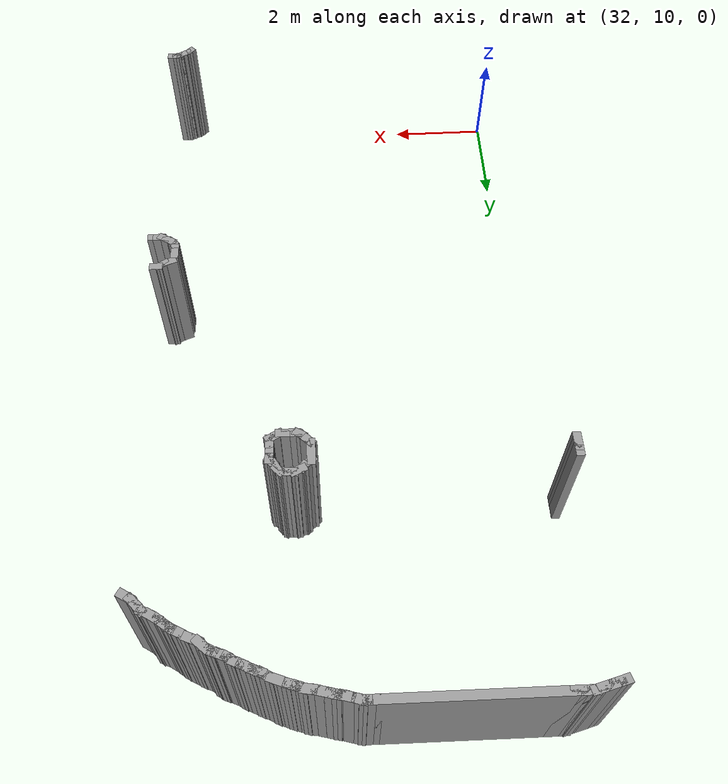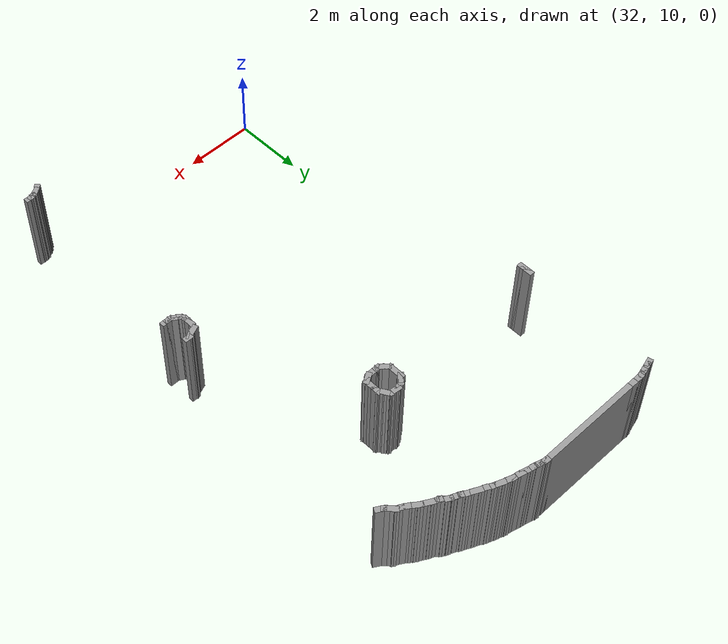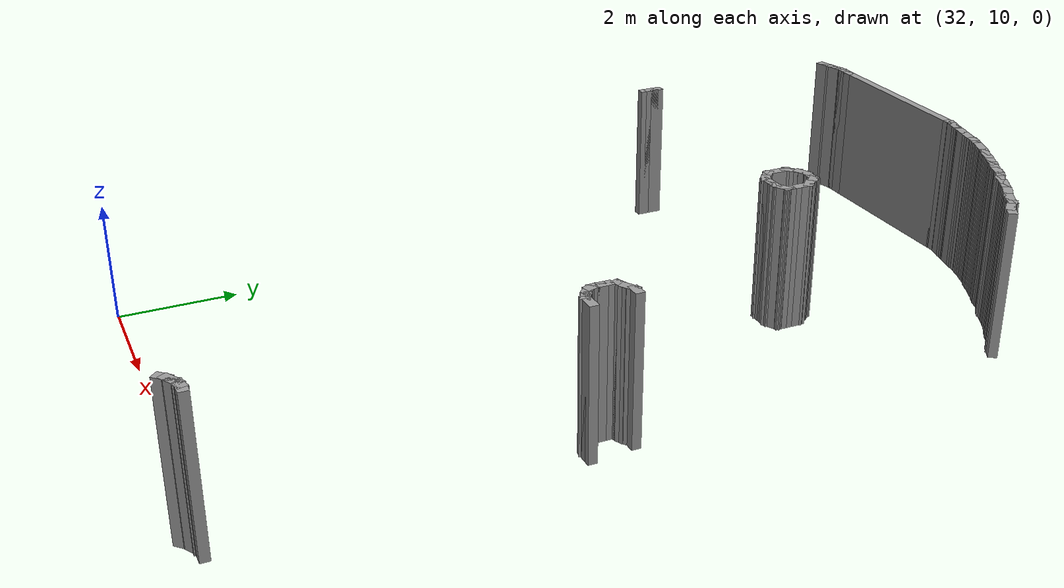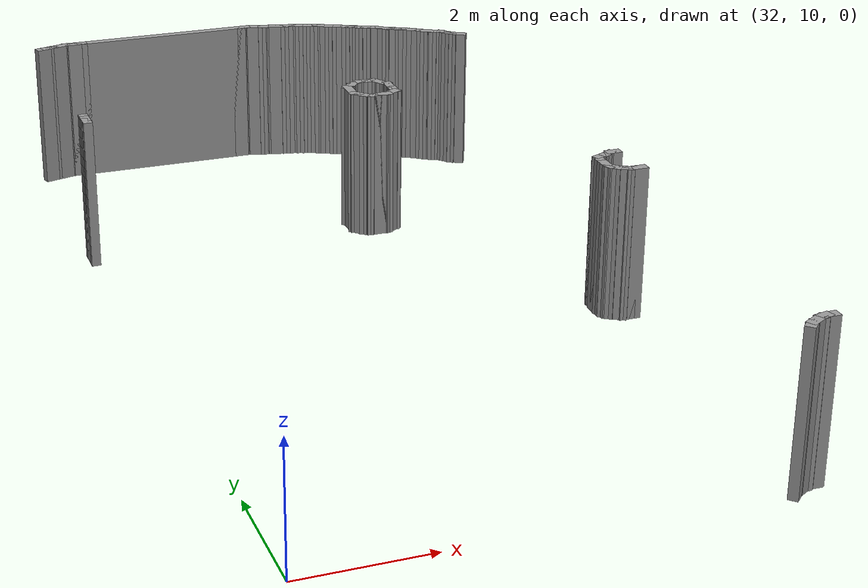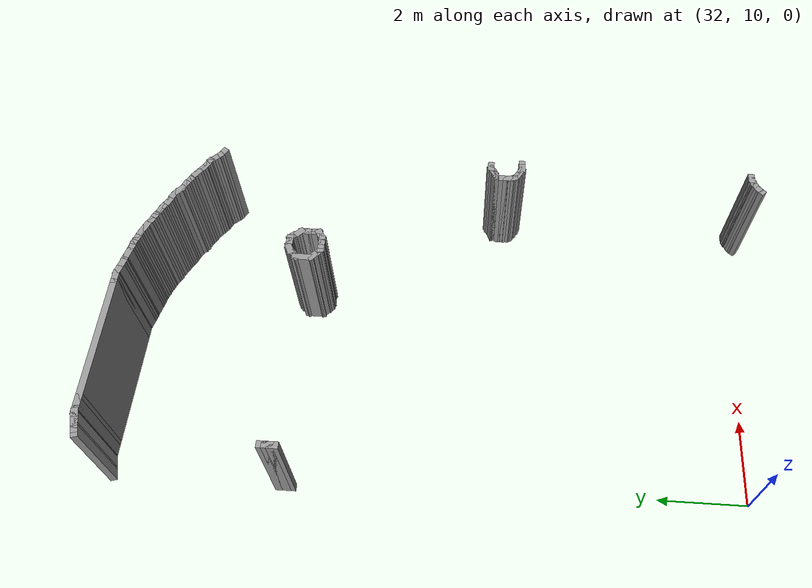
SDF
<sdf version="1.6">
 <model name="draft3">
  <pose>34.2026 -2.81154 0 0 -0 0</pose>
  <link name="Wall_181">
   <collision name="Wall_181_Collision">
    <geometry><box><size>0.25 0.15 2.5</size></box></geometry>
    <pose>0 0 1.25 0 -0 0</pose>
   </collision>
   <visual name="Wall_181_Visual">
    <pose>0 0 1.25 0 -0 0</pose>
    <geometry><box><size>0.25 0.15 2.5</size></box></geometry>
    <material>
     <script><uri>file://media/materials/scripts/gazebo.material</uri><name>Gazebo/Grey</name></script>
     <ambient>1 1 1 1</ambient>
    </material>
   </visual>
   <pose>-2.41075 26.8769 0 0 -0 0.261799</pose>
  </link>
  <link name="Wall_182">
   <collision name="Wall_182_Collision">
    <geometry><box><size>0.25 0.15 2.5</size></box></geometry>
    <pose>0 0 1.25 0 -0 0</pose>
   </collision>
   <visual name="Wall_182_Visual">
    <pose>0 0 1.25 0 -0 0</pose>
    <geometry><box><size>0.25 0.15 2.5</size></box></geometry>
    <material>
     <script><uri>file://media/materials/scripts/gazebo.material</uri><name>Gazebo/Grey</name></script>
     <ambient>1 1 1 1</ambient>
    </material>
   </visual>
   <pose>-2.31416 26.9028 0 0 -0 0.261799</pose>
  </link>
  <link name="Wall_183">
   <collision name="Wall_183_Collision">
    <geometry><box><size>0.25 0.15 2.5</size></box></geometry>
    <pose>0 0 1.25 0 -0 0</pose>
   </collision>
   <visual name="Wall_183_Visual">
    <pose>0 0 1.25 0 -0 0</pose>
    <geometry><box><size>0.25 0.15 2.5</size></box></geometry>
    <material>
     <script><uri>file://media/materials/scripts/gazebo.material</uri><name>Gazebo/Grey</name></script>
     <ambient>1 1 1 1</ambient>
    </material>
   </visual>
   <pose>-2.21757 26.9287 0 0 -0 0.261799</pose>
  </link>
  <link name="Wall_184">
   <collision name="Wall_184_Collision">
    <geometry><box><size>0.25 0.15 2.5</size></box></geometry>
    <pose>0 0 1.25 0 -0 0</pose>
   </collision>
   <visual name="Wall_184_Visual">
    <pose>0 0 1.25 0 -0 0</pose>
    <geometry><box><size>0.25 0.15 2.5</size></box></geometry>
    <material>
     <script><uri>file://media/materials/scripts/gazebo.material</uri><name>Gazebo/Grey</name></script>
     <ambient>1 1 1 1</ambient>
    </material>
   </visual>
   <pose>-2.12097 26.9545 0 0 -0 0.261799</pose>
  </link>
  <link name="Wall_185">
   <collision name="Wall_185_Collision">
    <geometry><box><size>0.25 0.15 2.5</size></box></geometry>
    <pose>0 0 1.25 0 -0 0</pose>
   </collision>
   <visual name="Wall_185_Visual">
    <pose>0 0 1.25 0 -0 0</pose>
    <geometry><box><size>0.25 0.15 2.5</size></box></geometry>
    <material>
     <script><uri>file://media/materials/scripts/gazebo.material</uri><name>Gazebo/Grey</name></script>
     <ambient>1 1 1 1</ambient>
    </material>
   </visual>
   <pose>-2.02438 26.9804 0 0 -0 0.261799</pose>
  </link>
  <link name="Wall_186">
   <collision name="Wall_186_Collision">
    <geometry><box><size>0.25 0.15 2.5</size></box></geometry>
    <pose>0 0 1.25 0 -0 0</pose>
   </collision>
   <visual name="Wall_186_Visual">
    <pose>0 0 1.25 0 -0 0</pose>
    <geometry><box><size>0.25 0.15 2.5</size></box></geometry>
    <material>
     <script><uri>file://media/materials/scripts/gazebo.material</uri><name>Gazebo/Grey</name></script>
     <ambient>1 1 1 1</ambient>
    </material>
   </visual>
   <pose>-1.92608 26.9934 0 0 -0 0</pose>
  </link>
  <link name="Wall_187">
   <collision name="Wall_187_Collision">
    <geometry><box><size>0.25 0.15 2.5</size></box></geometry>
    <pose>0 0 1.25 0 -0 0</pose>
   </collision>
   <visual name="Wall_187_Visual">
    <pose>0 0 1.25 0 -0 0</pose>
    <geometry><box><size>0.25 0.15 2.5</size></box></geometry>
    <material>
     <script><uri>file://media/materials/scripts/gazebo.material</uri><name>Gazebo/Grey</name></script>
     <ambient>1 1 1 1</ambient>
    </material>
   </visual>
   <pose>-1.82608 26.9934 0 0 -0 0</pose>
  </link>
  <link name="Wall_188">
   <collision name="Wall_188_Collision">
    <geometry><box><size>0.25 0.15 2.5</size></box></geometry>
    <pose>0 0 1.25 0 -0 0</pose>
   </collision>
   <visual name="Wall_188_Visual">
    <pose>0 0 1.25 0 -0 0</pose>
    <geometry><box><size>0.25 0.15 2.5</size></box></geometry>
    <material>
     <script><uri>file://media/materials/scripts/gazebo.material</uri><name>Gazebo/Grey</name></script>
     <ambient>1 1 1 1</ambient>
    </material>
   </visual>
   <pose>-1.72608 26.9934 0 0 -0 0</pose>
  </link>
  <link name="Wall_189">
   <collision name="Wall_189_Collision">
    <geometry><box><size>3 0.15 2.5</size></box></geometry>
    <pose>0 0 1.25 0 -0 0</pose>
   </collision>
   <visual name="Wall_189_Visual">
    <pose>0 0 1.25 0 -0 0</pose>
    <geometry><box><size>3 0.15 2.5</size></box></geometry>
    <material>
     <script><uri>file://media/materials/scripts/gazebo.material</uri><name>Gazebo/Grey</name></script>
     <ambient>1 1 1 1</ambient>
    </material>
   </visual>
   <pose>-0.251084 26.9934 0 0 -0 0</pose>
  </link>
  <link name="Wall_190">
   <collision name="Wall_190_Collision">
    <geometry><box><size>0.25 0.15 2.5</size></box></geometry>
    <pose>0 0 1.25 0 -0 0</pose>
   </collision>
   <visual name="Wall_190_Visual">
    <pose>0 0 1.25 0 -0 0</pose>
    <geometry><box><size>0.25 0.15 2.5</size></box></geometry>
    <material>
     <script><uri>file://media/materials/scripts/gazebo.material</uri><name>Gazebo/Grey</name></script>
     <ambient>1 1 1 1</ambient>
    </material>
   </visual>
   <pose>1.22392 26.9934 0 0 -0 0</pose>
  </link>
  <link name="Wall_191">
   <collision name="Wall_191_Collision">
    <geometry><box><size>0.25 0.15 2.5</size></box></geometry>
    <pose>0 0 1.25 0 -0 0</pose>
   </collision>
   <visual name="Wall_191_Visual">
    <pose>0 0 1.25 0 -0 0</pose>
    <geometry><box><size>0.25 0.15 2.5</size></box></geometry>
    <material>
     <script><uri>file://media/materials/scripts/gazebo.material</uri><name>Gazebo/Grey</name></script>
     <ambient>1 1 1 1</ambient>
    </material>
   </visual>
   <pose>1.32392 26.9934 0 0 -0 0</pose>
  </link>
  <link name="Wall_192">
   <collision name="Wall_192_Collision">
    <geometry><box><size>0.25 0.15 2.5</size></box></geometry>
    <pose>0 0 1.25 0 -0 0</pose>
   </collision>
   <visual name="Wall_192_Visual">
    <pose>0 0 1.25 0 -0 0</pose>
    <geometry><box><size>0.25 0.15 2.5</size></box></geometry>
    <material>
     <script><uri>file://media/materials/scripts/gazebo.material</uri><name>Gazebo/Grey</name></script>
     <ambient>1 1 1 1</ambient>
    </material>
   </visual>
   <pose>1.42221 26.9804 0 0 0 -0.261799</pose>
  </link>
  <link name="Wall_193">
   <collision name="Wall_193_Collision">
    <geometry><box><size>0.25 0.15 2.5</size></box></geometry>
    <pose>0 0 1.25 0 -0 0</pose>
   </collision>
   <visual name="Wall_193_Visual">
    <pose>0 0 1.25 0 -0 0</pose>
    <geometry><box><size>0.25 0.15 2.5</size></box></geometry>
    <material>
     <script><uri>file://media/materials/scripts/gazebo.material</uri><name>Gazebo/Grey</name></script>
     <ambient>1 1 1 1</ambient>
    </material>
   </visual>
   <pose>1.51881 26.9545 0 0 0 -0.261799</pose>
  </link>
  <link name="Wall_194">
   <collision name="Wall_194_Collision">
    <geometry><box><size>0.25 0.15 2.5</size></box></geometry>
    <pose>0 0 1.25 0 -0 0</pose>
   </collision>
   <visual name="Wall_194_Visual">
    <pose>0 0 1.25 0 -0 0</pose>
    <geometry><box><size>0.25 0.15 2.5</size></box></geometry>
    <material>
     <script><uri>file://media/materials/scripts/gazebo.material</uri><name>Gazebo/Grey</name></script>
     <ambient>1 1 1 1</ambient>
    </material>
   </visual>
   <pose>1.6154 26.9287 0 0 0 -0.261799</pose>
  </link>
  <link name="Wall_195">
   <collision name="Wall_195_Collision">
    <geometry><box><size>0.23983 0.15 2.5</size></box></geometry>
    <pose>0 0 1.25 0 -0 0</pose>
   </collision>
   <visual name="Wall_195_Visual">
    <pose>0 0 1.25 0 -0 0</pose>
    <geometry><box><size>0.23983 0.15 2.5</size></box></geometry>
    <material>
     <script><uri>file://media/materials/scripts/gazebo.material</uri><name>Gazebo/Grey</name></script>
     <ambient>1 1 1 1</ambient>
    </material>
   </visual>
   <pose>1.70796 26.9081 0 0 0 -0.170476</pose>
  </link>
  <link name="Wall_196">
   <collision name="Wall_196_Collision">
    <geometry><box><size>0.259056 0.15 2.5</size></box></geometry>
    <pose>0 0 1.25 0 -0 0</pose>
   </collision>
   <visual name="Wall_196_Visual">
    <pose>0 0 1.25 0 -0 0</pose>
    <geometry><box><size>0.259056 0.15 2.5</size></box></geometry>
    <material>
     <script><uri>file://media/materials/scripts/gazebo.material</uri><name>Gazebo/Grey</name></script>
     <ambient>1 1 1 1</ambient>
    </material>
   </visual>
   <pose>1.80512 26.8873 0 0 0 -0.244979</pose>
  </link>
  <link name="Wall_197">
   <collision name="Wall_197_Collision">
    <geometry><box><size>0.259056 0.15 2.5</size></box></geometry>
    <pose>0 0 1.25 0 -0 0</pose>
   </collision>
   <visual name="Wall_197_Visual">
    <pose>0 0 1.25 0 -0 0</pose>
    <geometry><box><size>0.259056 0.15 2.5</size></box></geometry>
    <material>
     <script><uri>file://media/materials/scripts/gazebo.material</uri><name>Gazebo/Grey</name></script>
     <ambient>1 1 1 1</ambient>
    </material>
   </visual>
   <pose>1.91092 26.8608 0 0 0 -0.244979</pose>
  </link>
  <link name="Wall_198">
   <collision name="Wall_198_Collision">
    <geometry><box><size>0.259056 0.15 2.5</size></box></geometry>
    <pose>0 0 1.25 0 -0 0</pose>
   </collision>
   <visual name="Wall_198_Visual">
    <pose>0 0 1.25 0 -0 0</pose>
    <geometry><box><size>0.259056 0.15 2.5</size></box></geometry>
    <material>
     <script><uri>file://media/materials/scripts/gazebo.material</uri><name>Gazebo/Grey</name></script>
     <ambient>1 1 1 1</ambient>
    </material>
   </visual>
   <pose>2.01672 26.8344 0 0 0 -0.244979</pose>
  </link>
  <link name="Wall_199">
   <collision name="Wall_199_Collision">
    <geometry><box><size>0.310889 0.15 2.5</size></box></geometry>
    <pose>0 0 1.25 0 -0 0</pose>
   </collision>
   <visual name="Wall_199_Visual">
    <pose>0 0 1.25 0 -0 0</pose>
    <geometry><box><size>0.310889 0.15 2.5</size></box></geometry>
    <material>
     <script><uri>file://media/materials/scripts/gazebo.material</uri><name>Gazebo/Grey</name></script>
     <ambient>1 1 1 1</ambient>
    </material>
   </visual>
   <pose>2.14897 26.8079 0 0 0 -0.165149</pose>
  </link>
  <link name="Wall_200">
   <collision name="Wall_200_Collision">
    <geometry><box><size>0.262994 0.15 2.5</size></box></geometry>
    <pose>0 0 1.25 0 -0 0</pose>
   </collision>
   <visual name="Wall_200_Visual">
    <pose>0 0 1.25 0 -0 0</pose>
    <geometry><box><size>0.262994 0.15 2.5</size></box></geometry>
    <material>
     <script><uri>file://media/materials/scripts/gazebo.material</uri><name>Gazebo/Grey</name></script>
     <ambient>1 1 1 1</ambient>
    </material>
   </visual>
   <pose>2.28122 26.7748 0 0 0 -0.358771</pose>
  </link>
  <link name="Wall_201">
   <collision name="Wall_201_Collision">
    <geometry><box><size>0.288073 0.15 2.5</size></box></geometry>
    <pose>0 0 1.25 0 -0 0</pose>
   </collision>
   <visual name="Wall_201_Visual">
    <pose>0 0 1.25 0 -0 0</pose>
    <geometry><box><size>0.288073 0.15 2.5</size></box></geometry>
    <material>
     <script><uri>file://media/materials/scripts/gazebo.material</uri><name>Gazebo/Grey</name></script>
     <ambient>1 1 1 1</ambient>
    </material>
   </visual>
   <pose>2.40024 26.7352 0 0 0 -0.291457</pose>
  </link>
  <link name="Wall_202">
   <collision name="Wall_202_Collision">
    <geometry><box><size>0.292438 0.15 2.5</size></box></geometry>
    <pose>0 0 1.25 0 -0 0</pose>
   </collision>
   <visual name="Wall_202_Visual">
    <pose>0 0 1.25 0 -0 0</pose>
    <geometry><box><size>0.292438 0.15 2.5</size></box></geometry>
    <material>
     <script><uri>file://media/materials/scripts/gazebo.material</uri><name>Gazebo/Grey</name></script>
     <ambient>1 1 1 1</ambient>
    </material>
   </visual>
   <pose>2.5325 26.6889 0 0 0 -0.380506</pose>
  </link>
  <link name="Wall_203">
   <collision name="Wall_203_Collision">
    <geometry><box><size>0.262994 0.15 2.5</size></box></geometry>
    <pose>0 0 1.25 0 -0 0</pose>
   </collision>
   <visual name="Wall_203_Visual">
    <pose>0 0 1.25 0 -0 0</pose>
    <geometry><box><size>0.262994 0.15 2.5</size></box></geometry>
    <material>
     <script><uri>file://media/materials/scripts/gazebo.material</uri><name>Gazebo/Grey</name></script>
     <ambient>1 1 1 1</ambient>
    </material>
   </visual>
   <pose>2.65152 26.6426 0 0 0 -0.358771</pose>
  </link>
  <link name="Wall_204">
   <collision name="Wall_204_Collision">
    <geometry><box><size>0.315709 0.15 2.5</size></box></geometry>
    <pose>0 0 1.25 0 -0 0</pose>
   </collision>
   <visual name="Wall_204_Visual">
    <pose>0 0 1.25 0 -0 0</pose>
    <geometry><box><size>0.315709 0.15 2.5</size></box></geometry>
    <material>
     <script><uri>file://media/materials/scripts/gazebo.material</uri><name>Gazebo/Grey</name></script>
     <ambient>1 1 1 1</ambient>
    </material>
   </visual>
   <pose>2.77716 26.5831 0 0 0 -0.499347</pose>
  </link>
  <link name="Wall_205">
   <collision name="Wall_205_Collision">
    <geometry><box><size>0.292438 0.15 2.5</size></box></geometry>
    <pose>0 0 1.25 0 -0 0</pose>
   </collision>
   <visual name="Wall_205_Visual">
    <pose>0 0 1.25 0 -0 0</pose>
    <geometry><box><size>0.292438 0.15 2.5</size></box></geometry>
    <material>
     <script><uri>file://media/materials/scripts/gazebo.material</uri><name>Gazebo/Grey</name></script>
     <ambient>1 1 1 1</ambient>
    </material>
   </visual>
   <pose>2.91602 26.517 0 0 0 -0.380506</pose>
  </link>
  <link name="Wall_206">
   <collision name="Wall_206_Collision">
    <geometry><box><size>0.327432 0.15 2.5</size></box></geometry>
    <pose>0 0 1.25 0 -0 0</pose>
   </collision>
   <visual name="Wall_206_Visual">
    <pose>0 0 1.25 0 -0 0</pose>
    <geometry><box><size>0.327432 0.15 2.5</size></box></geometry>
    <material>
     <script><uri>file://media/materials/scripts/gazebo.material</uri><name>Gazebo/Grey</name></script>
     <ambient>1 1 1 1</ambient>
    </material>
   </visual>
   <pose>3.0615 26.4508 0 0 0 -0.463648</pose>
  </link>
  <link name="Wall_207">
   <collision name="Wall_207_Collision">
    <geometry><box><size>0.280251 0.15 2.5</size></box></geometry>
    <pose>0 0 1.25 0 -0 0</pose>
   </collision>
   <visual name="Wall_207_Visual">
    <pose>0 0 1.25 0 -0 0</pose>
    <geometry><box><size>0.280251 0.15 2.5</size></box></geometry>
    <material>
     <script><uri>file://media/materials/scripts/gazebo.material</uri><name>Gazebo/Grey</name></script>
     <ambient>1 1 1 1</ambient>
    </material>
   </visual>
   <pose>3.20036 26.3847 0 0 0 -0.418224</pose>
  </link>
  <link name="Wall_208">
   <collision name="Wall_208_Collision">
    <geometry><box><size>0.274764 0.15 2.5</size></box></geometry>
    <pose>0 0 1.25 0 -0 0</pose>
   </collision>
   <visual name="Wall_208_Visual">
    <pose>0 0 1.25 0 -0 0</pose>
    <geometry><box><size>0.274764 0.15 2.5</size></box></geometry>
    <material>
     <script><uri>file://media/materials/scripts/gazebo.material</uri><name>Gazebo/Grey</name></script>
     <ambient>1 1 1 1</ambient>
    </material>
   </visual>
   <pose>3.31277 26.3252 0 0 0 -0.558599</pose>
  </link>
  <link name="Wall_209">
   <collision name="Wall_209_Collision">
    <geometry><box><size>0.280251 0.15 2.5</size></box></geometry>
    <pose>0 0 1.25 0 -0 0</pose>
   </collision>
   <visual name="Wall_209_Visual">
    <pose>0 0 1.25 0 -0 0</pose>
    <geometry><box><size>0.280251 0.15 2.5</size></box></geometry>
    <material>
     <script><uri>file://media/materials/scripts/gazebo.material</uri><name>Gazebo/Grey</name></script>
     <ambient>1 1 1 1</ambient>
    </material>
   </visual>
   <pose>3.42519 26.2657 0 0 0 -0.418224</pose>
  </link>
  <link name="Wall_210">
   <collision name="Wall_210_Collision">
    <geometry><box><size>0.233642 0.15 2.5</size></box></geometry>
    <pose>0 0 1.25 0 -0 0</pose>
   </collision>
   <visual name="Wall_210_Visual">
    <pose>0 0 1.25 0 -0 0</pose>
    <geometry><box><size>0.233642 0.15 2.5</size></box></geometry>
    <material>
     <script><uri>file://media/materials/scripts/gazebo.material</uri><name>Gazebo/Grey</name></script>
     <ambient>1 1 1 1</ambient>
    </material>
   </visual>
   <pose>3.52437 26.226 0 0 0 -0.321751</pose>
  </link>
  <link name="Wall_211">
   <collision name="Wall_211_Collision">
    <geometry><box><size>0.28616 0.15 2.5</size></box></geometry>
    <pose>0 0 1.25 0 -0 0</pose>
   </collision>
   <visual name="Wall_211_Visual">
    <pose>0 0 1.25 0 -0 0</pose>
    <geometry><box><size>0.28616 0.15 2.5</size></box></geometry>
    <material>
     <script><uri>file://media/materials/scripts/gazebo.material</uri><name>Gazebo/Grey</name></script>
     <ambient>1 1 1 1</ambient>
    </material>
   </visual>
   <pose>3.62356 26.1797 0 0 0 -0.507099</pose>
  </link>
  <link name="Wall_212">
   <collision name="Wall_212_Collision">
    <geometry><box><size>0.30925 0.15 2.5</size></box></geometry>
    <pose>0 0 1.25 0 -0 0</pose>
   </collision>
   <visual name="Wall_212_Visual">
    <pose>0 0 1.25 0 -0 0</pose>
    <geometry><box><size>0.30925 0.15 2.5</size></box></geometry>
    <material>
     <script><uri>file://media/materials/scripts/gazebo.material</uri><name>Gazebo/Grey</name></script>
     <ambient>1 1 1 1</ambient>
    </material>
   </visual>
   <pose>3.74258 26.0938 0 0 0 -0.726642</pose>
  </link>
  <link name="Wall_213">
   <collision name="Wall_213_Collision">
    <geometry><box><size>0.321925 0.15 2.5</size></box></geometry>
    <pose>0 0 1.25 0 -0 0</pose>
   </collision>
   <visual name="Wall_213_Visual">
    <pose>0 0 1.25 0 -0 0</pose>
    <geometry><box><size>0.321925 0.15 2.5</size></box></geometry>
    <material>
     <script><uri>file://media/materials/scripts/gazebo.material</uri><name>Gazebo/Grey</name></script>
     <ambient>1 1 1 1</ambient>
    </material>
   </visual>
   <pose>3.88145 26.0078 0 0 0 -0.394791</pose>
  </link>
  <link name="Wall_214">
   <collision name="Wall_214_Collision">
    <geometry><box><size>0.28616 0.15 2.5</size></box></geometry>
    <pose>0 0 1.25 0 -0 0</pose>
   </collision>
   <visual name="Wall_214_Visual">
    <pose>0 0 1.25 0 -0 0</pose>
    <geometry><box><size>0.28616 0.15 2.5</size></box></geometry>
    <material>
     <script><uri>file://media/materials/scripts/gazebo.material</uri><name>Gazebo/Grey</name></script>
     <ambient>1 1 1 1</ambient>
    </material>
   </visual>
   <pose>4.02031 25.9417 0 0 0 -0.507099</pose>
  </link>
  <link name="Wall_215">
   <collision name="Wall_215_Collision">
    <geometry><box><size>0.315709 0.15 2.5</size></box></geometry>
    <pose>0 0 1.25 0 -0 0</pose>
   </collision>
   <visual name="Wall_215_Visual">
    <pose>0 0 1.25 0 -0 0</pose>
    <geometry><box><size>0.315709 0.15 2.5</size></box></geometry>
    <material>
     <script><uri>file://media/materials/scripts/gazebo.material</uri><name>Gazebo/Grey</name></script>
     <ambient>1 1 1 1</ambient>
    </material>
   </visual>
   <pose>4.15256 25.8689 0 0 0 -0.499347</pose>
  </link>
  <link name="Wall_216">
   <collision name="Wall_216_Collision">
    <geometry><box><size>0.263766 0.15 2.5</size></box></geometry>
    <pose>0 0 1.25 0 -0 0</pose>
   </collision>
   <visual name="Wall_216_Visual">
    <pose>0 0 1.25 0 -0 0</pose>
    <geometry><box><size>0.263766 0.15 2.5</size></box></geometry>
    <material>
     <script><uri>file://media/materials/scripts/gazebo.material</uri><name>Gazebo/Grey</name></script>
     <ambient>1 1 1 1</ambient>
    </material>
   </visual>
   <pose>4.27158 25.7962 0 0 0 -0.620249</pose>
  </link>
  <link name="Wall_217">
   <collision name="Wall_217_Collision">
    <geometry><box><size>0.28225 0.15 2.5</size></box></geometry>
    <pose>0 0 1.25 0 -0 0</pose>
   </collision>
   <visual name="Wall_217_Visual">
    <pose>0 0 1.25 0 -0 0</pose>
    <geometry><box><size>0.28225 0.15 2.5</size></box></geometry>
    <material>
     <script><uri>file://media/materials/scripts/gazebo.material</uri><name>Gazebo/Grey</name></script>
     <ambient>1 1 1 1</ambient>
    </material>
   </visual>
   <pose>4.37077 25.7235 0 0 0 -0.643501</pose>
  </link>
  <link name="Wall_218">
   <collision name="Wall_218_Collision">
    <geometry><box><size>0.304229 0.15 2.5</size></box></geometry>
    <pose>0 0 1.25 0 -0 0</pose>
   </collision>
   <visual name="Wall_218_Visual">
    <pose>0 0 1.25 0 -0 0</pose>
    <geometry><box><size>0.304229 0.15 2.5</size></box></geometry>
    <material>
     <script><uri>file://media/materials/scripts/gazebo.material</uri><name>Gazebo/Grey</name></script>
     <ambient>1 1 1 1</ambient>
    </material>
   </visual>
   <pose>4.48979 25.6441 0 0 0 -0.54042</pose>
  </link>
  <link name="Wall_219">
   <collision name="Wall_219_Collision">
    <geometry><box><size>0.280251 0.15 2.5</size></box></geometry>
    <pose>0 0 1.25 0 -0 0</pose>
   </collision>
   <visual name="Wall_219_Visual">
    <pose>0 0 1.25 0 -0 0</pose>
    <geometry><box><size>0.280251 0.15 2.5</size></box></geometry>
    <material>
     <script><uri>file://media/materials/scripts/gazebo.material</uri><name>Gazebo/Grey</name></script>
     <ambient>1 1 1 1</ambient>
    </material>
   </visual>
   <pose>4.61543 25.578 0 0 0 -0.418224</pose>
  </link>
  <link name="Wall_220">
   <collision name="Wall_220_Collision">
    <geometry><box><size>0.290584 0.15 2.5</size></box></geometry>
    <pose>0 0 1.25 0 -0 0</pose>
   </collision>
   <visual name="Wall_220_Visual">
    <pose>0 0 1.25 0 -0 0</pose>
    <geometry><box><size>0.290584 0.15 2.5</size></box></geometry>
    <material>
     <script><uri>file://media/materials/scripts/gazebo.material</uri><name>Gazebo/Grey</name></script>
     <ambient>1 1 1 1</ambient>
    </material>
   </visual>
   <pose>4.72123 25.4986 0 0 0 -0.851966</pose>
  </link>
  <link name="Wall_221">
   <collision name="Wall_221_Collision">
    <geometry><box><size>0.280921 0.15 2.5</size></box></geometry>
    <pose>0 0 1.25 0 -0 0</pose>
   </collision>
   <visual name="Wall_221_Visual">
    <pose>0 0 1.25 0 -0 0</pose>
    <geometry><box><size>0.280921 0.15 2.5</size></box></geometry>
    <material>
     <script><uri>file://media/materials/scripts/gazebo.material</uri><name>Gazebo/Grey</name></script>
     <ambient>1 1 1 1</ambient>
    </material>
   </visual>
   <pose>4.81381 25.3994 0 0 0 -0.785398</pose>
  </link>
  <link name="Wall_222">
   <collision name="Wall_222_Collision">
    <geometry><box><size>0.304229 0.15 2.5</size></box></geometry>
    <pose>0 0 1.25 0 -0 0</pose>
   </collision>
   <visual name="Wall_222_Visual">
    <pose>0 0 1.25 0 -0 0</pose>
    <geometry><box><size>0.304229 0.15 2.5</size></box></geometry>
    <material>
     <script><uri>file://media/materials/scripts/gazebo.material</uri><name>Gazebo/Grey</name></script>
     <ambient>1 1 1 1</ambient>
    </material>
   </visual>
   <pose>4.92622 25.3135 0 0 0 -0.54042</pose>
  </link>
  <link name="Wall_414">
   <collision name="Wall_414_Collision">
    <geometry><box><size>0.25 0.15 2.5</size></box></geometry>
    <pose>0 0 1.25 0 -0 0</pose>
   </collision>
   <visual name="Wall_414_Visual">
    <pose>0 0 1.25 0 -0 0</pose>
    <geometry><box><size>0.25 0.15 2.5</size></box></geometry>
    <material>
     <script><uri>file://media/materials/scripts/gazebo.material</uri><name>Gazebo/Grey</name></script>
     <ambient>1 1 1 1</ambient>
    </material>
   </visual>
   <pose>4.96491 12.6962 0 0 -0 3.14159</pose>
  </link>
  <link name="Wall_415">
   <collision name="Wall_415_Collision">
    <geometry><box><size>0.25 0.15 2.5</size></box></geometry>
    <pose>0 0 1.25 0 -0 0</pose>
   </collision>
   <visual name="Wall_415_Visual">
    <pose>0 0 1.25 0 -0 0</pose>
    <geometry><box><size>0.25 0.15 2.5</size></box></geometry>
    <material>
     <script><uri>file://media/materials/scripts/gazebo.material</uri><name>Gazebo/Grey</name></script>
     <ambient>1 1 1 1</ambient>
    </material>
   </visual>
   <pose>4.86662 12.6833 0 0 0 -2.87979</pose>
  </link>
  <link name="Wall_416">
   <collision name="Wall_416_Collision">
    <geometry><box><size>0.16 0.15 2.5</size></box></geometry>
    <pose>0 0 1.25 0 -0 0</pose>
   </collision>
   <visual name="Wall_416_Visual">
    <pose>0 0 1.25 0 -0 0</pose>
    <geometry><box><size>0.16 0.15 2.5</size></box></geometry>
    <material>
     <script><uri>file://media/materials/scripts/gazebo.material</uri><name>Gazebo/Grey</name></script>
     <ambient>1 1 1 1</ambient>
    </material>
   </visual>
   <pose>4.82332 12.6703 0 0 -0 0</pose>
  </link>
  <link name="Wall_417">
   <collision name="Wall_417_Collision">
    <geometry><box><size>0.16 0.15 2.5</size></box></geometry>
    <pose>0 0 1.25 0 -0 0</pose>
   </collision>
   <visual name="Wall_417_Visual">
    <pose>0 0 1.25 0 -0 0</pose>
    <geometry><box><size>0.16 0.15 2.5</size></box></geometry>
    <material>
     <script><uri>file://media/materials/scripts/gazebo.material</uri><name>Gazebo/Grey</name></script>
     <ambient>1 1 1 1</ambient>
    </material>
   </visual>
   <pose>4.82332 12.6703 0 0 -0 3.14159</pose>
  </link>
  <link name="Wall_418">
   <collision name="Wall_418_Collision">
    <geometry><box><size>0.25 0.15 2.5</size></box></geometry>
    <pose>0 0 1.25 0 -0 0</pose>
   </collision>
   <visual name="Wall_418_Visual">
    <pose>0 0 1.25 0 -0 0</pose>
    <geometry><box><size>0.25 0.15 2.5</size></box></geometry>
    <material>
     <script><uri>file://media/materials/scripts/gazebo.material</uri><name>Gazebo/Grey</name></script>
     <ambient>1 1 1 1</ambient>
    </material>
   </visual>
   <pose>4.77502 12.6453 0 0 0 -2.61799</pose>
  </link>
  <link name="Wall_419">
   <collision name="Wall_419_Collision">
    <geometry><box><size>0.25 0.15 2.5</size></box></geometry>
    <pose>0 0 1.25 0 -0 0</pose>
   </collision>
   <visual name="Wall_419_Visual">
    <pose>0 0 1.25 0 -0 0</pose>
    <geometry><box><size>0.25 0.15 2.5</size></box></geometry>
    <material>
     <script><uri>file://media/materials/scripts/gazebo.material</uri><name>Gazebo/Grey</name></script>
     <ambient>1 1 1 1</ambient>
    </material>
   </visual>
   <pose>4.68841 12.5953 0 0 0 -2.61799</pose>
  </link>
  <link name="Wall_420">
   <collision name="Wall_420_Collision">
    <geometry><box><size>0.25 0.15 2.5</size></box></geometry>
    <pose>0 0 1.25 0 -0 0</pose>
   </collision>
   <visual name="Wall_420_Visual">
    <pose>0 0 1.25 0 -0 0</pose>
    <geometry><box><size>0.25 0.15 2.5</size></box></geometry>
    <material>
     <script><uri>file://media/materials/scripts/gazebo.material</uri><name>Gazebo/Grey</name></script>
     <ambient>1 1 1 1</ambient>
    </material>
   </visual>
   <pose>4.60976 12.535 0 0 0 -2.35619</pose>
  </link>
  <link name="Wall_507">
   <collision name="Wall_507_Collision">
    <geometry><box><size>0.25 0.15 2.5</size></box></geometry>
    <pose>0 0 1.25 0 -0 0</pose>
   </collision>
   <visual name="Wall_507_Visual">
    <pose>0 0 1.25 0 -0 0</pose>
    <geometry><box><size>0.25 0.15 2.5</size></box></geometry>
    <material>
     <script><uri>file://media/materials/scripts/gazebo.material</uri><name>Gazebo/Grey</name></script>
     <ambient>1 1 1 1</ambient>
    </material>
   </visual>
   <pose>4.59171 18.5314 0 0 0 -1.5708</pose>
  </link>
  <link name="Wall_508">
   <collision name="Wall_508_Collision">
    <geometry><box><size>0.25 0.15 2.5</size></box></geometry>
    <pose>0 0 1.25 0 -0 0</pose>
   </collision>
   <visual name="Wall_508_Visual">
    <pose>0 0 1.25 0 -0 0</pose>
    <geometry><box><size>0.25 0.15 2.5</size></box></geometry>
    <material>
     <script><uri>file://media/materials/scripts/gazebo.material</uri><name>Gazebo/Grey</name></script>
     <ambient>1 1 1 1</ambient>
    </material>
   </visual>
   <pose>4.59171 18.4314 0 0 0 -1.5708</pose>
  </link>
  <link name="Wall_509">
   <collision name="Wall_509_Collision">
    <geometry><box><size>0.25 0.15 2.5</size></box></geometry>
    <pose>0 0 1.25 0 -0 0</pose>
   </collision>
   <visual name="Wall_509_Visual">
    <pose>0 0 1.25 0 -0 0</pose>
    <geometry><box><size>0.25 0.15 2.5</size></box></geometry>
    <material>
     <script><uri>file://media/materials/scripts/gazebo.material</uri><name>Gazebo/Grey</name></script>
     <ambient>1 1 1 1</ambient>
    </material>
   </visual>
   <pose>4.60465 18.3331 0 0 0 -1.309</pose>
  </link>
  <link name="Wall_510">
   <collision name="Wall_510_Collision">
    <geometry><box><size>0.25 0.15 2.5</size></box></geometry>
    <pose>0 0 1.25 0 -0 0</pose>
   </collision>
   <visual name="Wall_510_Visual">
    <pose>0 0 1.25 0 -0 0</pose>
    <geometry><box><size>0.25 0.15 2.5</size></box></geometry>
    <material>
     <script><uri>file://media/materials/scripts/gazebo.material</uri><name>Gazebo/Grey</name></script>
     <ambient>1 1 1 1</ambient>
    </material>
   </visual>
   <pose>4.65295 18.2494 0 0 0 -0.785398</pose>
  </link>
  <link name="Wall_511">
   <collision name="Wall_511_Collision">
    <geometry><box><size>0.25 0.15 2.5</size></box></geometry>
    <pose>0 0 1.25 0 -0 0</pose>
   </collision>
   <visual name="Wall_511_Visual">
    <pose>0 0 1.25 0 -0 0</pose>
    <geometry><box><size>0.25 0.15 2.5</size></box></geometry>
    <material>
     <script><uri>file://media/materials/scripts/gazebo.material</uri><name>Gazebo/Grey</name></script>
     <ambient>1 1 1 1</ambient>
    </material>
   </visual>
   <pose>4.73161 18.1891 0 0 0 -0.523599</pose>
  </link>
  <link name="Wall_512">
   <collision name="Wall_512_Collision">
    <geometry><box><size>0.25 0.15 2.5</size></box></geometry>
    <pose>0 0 1.25 0 -0 0</pose>
   </collision>
   <visual name="Wall_512_Visual">
    <pose>0 0 1.25 0 -0 0</pose>
    <geometry><box><size>0.25 0.15 2.5</size></box></geometry>
    <material>
     <script><uri>file://media/materials/scripts/gazebo.material</uri><name>Gazebo/Grey</name></script>
     <ambient>1 1 1 1</ambient>
    </material>
   </visual>
   <pose>4.81821 18.1391 0 0 0 -0.523599</pose>
  </link>
  <link name="Wall_513">
   <collision name="Wall_513_Collision">
    <geometry><box><size>0.25 0.15 2.5</size></box></geometry>
    <pose>0 0 1.25 0 -0 0</pose>
   </collision>
   <visual name="Wall_513_Visual">
    <pose>0 0 1.25 0 -0 0</pose>
    <geometry><box><size>0.25 0.15 2.5</size></box></geometry>
    <material>
     <script><uri>file://media/materials/scripts/gazebo.material</uri><name>Gazebo/Grey</name></script>
     <ambient>1 1 1 1</ambient>
    </material>
   </visual>
   <pose>4.91151 18.114 0 0 -0 0</pose>
  </link>
  <link name="Wall_514">
   <collision name="Wall_514_Collision">
    <geometry><box><size>0.25 0.15 2.5</size></box></geometry>
    <pose>0 0 1.25 0 -0 0</pose>
   </collision>
   <visual name="Wall_514_Visual">
    <pose>0 0 1.25 0 -0 0</pose>
    <geometry><box><size>0.25 0.15 2.5</size></box></geometry>
    <material>
     <script><uri>file://media/materials/scripts/gazebo.material</uri><name>Gazebo/Grey</name></script>
     <ambient>1 1 1 1</ambient>
    </material>
   </visual>
   <pose>5.01151 18.114 0 0 -0 0</pose>
  </link>
  <link name="Wall_526">
   <collision name="Wall_526_Collision">
    <geometry><box><size>0.25 0.15 2.5</size></box></geometry>
    <pose>0 0 1.25 0 -0 0</pose>
   </collision>
   <visual name="Wall_526_Visual">
    <pose>0 0 1.25 0 -0 0</pose>
    <geometry><box><size>0.25 0.15 2.5</size></box></geometry>
    <material>
     <script><uri>file://media/materials/scripts/gazebo.material</uri><name>Gazebo/Grey</name></script>
     <ambient>1 1 1 1</ambient>
    </material>
   </visual>
   <pose>4.92831 18.846 0 0 -0 3.14159</pose>
  </link>
  <link name="Wall_527">
   <collision name="Wall_527_Collision">
    <geometry><box><size>0.300584 0.15 2.5</size></box></geometry>
    <pose>0 0 1.25 0 -0 0</pose>
   </collision>
   <visual name="Wall_527_Visual">
    <pose>0 0 1.25 0 -0 0</pose>
    <geometry><box><size>0.300584 0.15 2.5</size></box></geometry>
    <material>
     <script><uri>file://media/materials/scripts/gazebo.material</uri><name>Gazebo/Grey</name></script>
     <ambient>1 1 1 1</ambient>
    </material>
   </visual>
   <pose>4.81436 18.8062 0 0 0 -2.5856</pose>
  </link>
  <link name="Wall_528">
   <collision name="Wall_528_Collision">
    <geometry><box><size>0.292438 0.15 2.5</size></box></geometry>
    <pose>0 0 1.25 0 -0 0</pose>
   </collision>
   <visual name="Wall_528_Visual">
    <pose>0 0 1.25 0 -0 0</pose>
    <geometry><box><size>0.292438 0.15 2.5</size></box></geometry>
    <material>
     <script><uri>file://media/materials/scripts/gazebo.material</uri><name>Gazebo/Grey</name></script>
     <ambient>1 1 1 1</ambient>
    </material>
   </visual>
   <pose>4.68428 18.7401 0 0 0 -2.76109</pose>
  </link>
  <link name="Wall_529">
   <collision name="Wall_529_Collision">
    <geometry><box><size>0.292438 0.15 2.5</size></box></geometry>
    <pose>0 0 1.25 0 -0 0</pose>
   </collision>
   <visual name="Wall_529_Visual">
    <pose>0 0 1.25 0 -0 0</pose>
    <geometry><box><size>0.292438 0.15 2.5</size></box></geometry>
    <material>
     <script><uri>file://media/materials/scripts/gazebo.material</uri><name>Gazebo/Grey</name></script>
     <ambient>1 1 1 1</ambient>
    </material>
   </visual>
   <pose>4.68428 18.7401 0 0 -0 0.380506</pose>
  </link>
  <link name="Wall_555">
   <collision name="Wall_555_Collision">
    <geometry><box><size>0.5 0.15 2.5</size></box></geometry>
    <pose>0 0 1.25 0 -0 0</pose>
   </collision>
   <visual name="Wall_555_Visual">
    <pose>0 0 1.25 0 -0 0</pose>
    <geometry><box><size>0.5 0.15 2.5</size></box></geometry>
    <material>
     <script><uri>file://media/materials/scripts/gazebo.material</uri><name>Gazebo/Grey</name></script>
     <ambient>1 1 1 1</ambient>
    </material>
   </visual>
   <pose>2.05251 22.9425 0 0 0 -1.5708</pose>
  </link>
  <link name="Wall_556">
   <collision name="Wall_556_Collision">
    <geometry><box><size>0.25 0.15 2.5</size></box></geometry>
    <pose>0 0 1.25 0 -0 0</pose>
   </collision>
   <visual name="Wall_556_Visual">
    <pose>0 0 1.25 0 -0 0</pose>
    <geometry><box><size>0.25 0.15 2.5</size></box></geometry>
    <material>
     <script><uri>file://media/materials/scripts/gazebo.material</uri><name>Gazebo/Grey</name></script>
     <ambient>1 1 1 1</ambient>
    </material>
   </visual>
   <pose>2.08786 22.7322 0 0 0 -0.785398</pose>
  </link>
  <link name="Wall_557">
   <collision name="Wall_557_Collision">
    <geometry><box><size>0.25 0.15 2.5</size></box></geometry>
    <pose>0 0 1.25 0 -0 0</pose>
   </collision>
   <visual name="Wall_557_Visual">
    <pose>0 0 1.25 0 -0 0</pose>
    <geometry><box><size>0.25 0.15 2.5</size></box></geometry>
    <material>
     <script><uri>file://media/materials/scripts/gazebo.material</uri><name>Gazebo/Grey</name></script>
     <ambient>1 1 1 1</ambient>
    </material>
   </visual>
   <pose>2.15858 22.6615 0 0 0 -0.785398</pose>
  </link>
  <link name="Wall_558">
   <collision name="Wall_558_Collision">
    <geometry><box><size>0.25 0.15 2.5</size></box></geometry>
    <pose>0 0 1.25 0 -0 0</pose>
   </collision>
   <visual name="Wall_558_Visual">
    <pose>0 0 1.25 0 -0 0</pose>
    <geometry><box><size>0.25 0.15 2.5</size></box></geometry>
    <material>
     <script><uri>file://media/materials/scripts/gazebo.material</uri><name>Gazebo/Grey</name></script>
     <ambient>1 1 1 1</ambient>
    </material>
   </visual>
   <pose>2.23723 22.6011 0 0 0 -0.523599</pose>
  </link>
  <link name="Wall_559">
   <collision name="Wall_559_Collision">
    <geometry><box><size>0.25 0.15 2.5</size></box></geometry>
    <pose>0 0 1.25 0 -0 0</pose>
   </collision>
   <visual name="Wall_559_Visual">
    <pose>0 0 1.25 0 -0 0</pose>
    <geometry><box><size>0.25 0.15 2.5</size></box></geometry>
    <material>
     <script><uri>file://media/materials/scripts/gazebo.material</uri><name>Gazebo/Grey</name></script>
     <ambient>1 1 1 1</ambient>
    </material>
   </visual>
   <pose>2.33053 22.5761 0 0 -0 0</pose>
  </link>
  <link name="Wall_560">
   <collision name="Wall_560_Collision">
    <geometry><box><size>0.25 0.15 2.5</size></box></geometry>
    <pose>0 0 1.25 0 -0 0</pose>
   </collision>
   <visual name="Wall_560_Visual">
    <pose>0 0 1.25 0 -0 0</pose>
    <geometry><box><size>0.25 0.15 2.5</size></box></geometry>
    <material>
     <script><uri>file://media/materials/scripts/gazebo.material</uri><name>Gazebo/Grey</name></script>
     <ambient>1 1 1 1</ambient>
    </material>
   </visual>
   <pose>2.43053 22.5761 0 0 -0 0</pose>
  </link>
  <link name="Wall_561">
   <collision name="Wall_561_Collision">
    <geometry><box><size>0.25 0.15 2.5</size></box></geometry>
    <pose>0 0 1.25 0 -0 0</pose>
   </collision>
   <visual name="Wall_561_Visual">
    <pose>0 0 1.25 0 -0 0</pose>
    <geometry><box><size>0.25 0.15 2.5</size></box></geometry>
    <material>
     <script><uri>file://media/materials/scripts/gazebo.material</uri><name>Gazebo/Grey</name></script>
     <ambient>1 1 1 1</ambient>
    </material>
   </visual>
   <pose>2.53053 22.5761 0 0 -0 0</pose>
  </link>
  <link name="Wall_562">
   <collision name="Wall_562_Collision">
    <geometry><box><size>0.25 0.15 2.5</size></box></geometry>
    <pose>0 0 1.25 0 -0 0</pose>
   </collision>
   <visual name="Wall_562_Visual">
    <pose>0 0 1.25 0 -0 0</pose>
    <geometry><box><size>0.25 0.15 2.5</size></box></geometry>
    <material>
     <script><uri>file://media/materials/scripts/gazebo.material</uri><name>Gazebo/Grey</name></script>
     <ambient>1 1 1 1</ambient>
    </material>
   </visual>
   <pose>2.62384 22.6011 0 0 -0 0.523599</pose>
  </link>
  <link name="Wall_563">
   <collision name="Wall_563_Collision">
    <geometry><box><size>0.25 0.15 2.5</size></box></geometry>
    <pose>0 0 1.25 0 -0 0</pose>
   </collision>
   <visual name="Wall_563_Visual">
    <pose>0 0 1.25 0 -0 0</pose>
    <geometry><box><size>0.25 0.15 2.5</size></box></geometry>
    <material>
     <script><uri>file://media/materials/scripts/gazebo.material</uri><name>Gazebo/Grey</name></script>
     <ambient>1 1 1 1</ambient>
    </material>
   </visual>
   <pose>2.71044 22.6511 0 0 -0 0.523599</pose>
  </link>
  <link name="Wall_564">
   <collision name="Wall_564_Collision">
    <geometry><box><size>0.25 0.15 2.5</size></box></geometry>
    <pose>0 0 1.25 0 -0 0</pose>
   </collision>
   <visual name="Wall_564_Visual">
    <pose>0 0 1.25 0 -0 0</pose>
    <geometry><box><size>0.25 0.15 2.5</size></box></geometry>
    <material>
     <script><uri>file://media/materials/scripts/gazebo.material</uri><name>Gazebo/Grey</name></script>
     <ambient>1 1 1 1</ambient>
    </material>
   </visual>
   <pose>2.75374 22.7261 0 0 -0 1.5708</pose>
  </link>
  <link name="Wall_565">
   <collision name="Wall_565_Collision">
    <geometry><box><size>0.25 0.15 2.5</size></box></geometry>
    <pose>0 0 1.25 0 -0 0</pose>
   </collision>
   <visual name="Wall_565_Visual">
    <pose>0 0 1.25 0 -0 0</pose>
    <geometry><box><size>0.25 0.15 2.5</size></box></geometry>
    <material>
     <script><uri>file://media/materials/scripts/gazebo.material</uri><name>Gazebo/Grey</name></script>
     <ambient>1 1 1 1</ambient>
    </material>
   </visual>
   <pose>2.75374 22.8261 0 0 -0 1.5708</pose>
  </link>
  <link name="Wall_566">
   <collision name="Wall_566_Collision">
    <geometry><box><size>0.25 0.15 2.5</size></box></geometry>
    <pose>0 0 1.25 0 -0 0</pose>
   </collision>
   <visual name="Wall_566_Visual">
    <pose>0 0 1.25 0 -0 0</pose>
    <geometry><box><size>0.25 0.15 2.5</size></box></geometry>
    <material>
     <script><uri>file://media/materials/scripts/gazebo.material</uri><name>Gazebo/Grey</name></script>
     <ambient>1 1 1 1</ambient>
    </material>
   </visual>
   <pose>2.75374 22.9261 0 0 -0 1.5708</pose>
  </link>
  <link name="Wall_567">
   <collision name="Wall_567_Collision">
    <geometry><box><size>0.25 0.15 2.5</size></box></geometry>
    <pose>0 0 1.25 0 -0 0</pose>
   </collision>
   <visual name="Wall_567_Visual">
    <pose>0 0 1.25 0 -0 0</pose>
    <geometry><box><size>0.25 0.15 2.5</size></box></geometry>
    <material>
     <script><uri>file://media/materials/scripts/gazebo.material</uri><name>Gazebo/Grey</name></script>
     <ambient>1 1 1 1</ambient>
    </material>
   </visual>
   <pose>2.75374 23.0261 0 0 -0 1.5708</pose>
  </link>
  <link name="Wall_568">
   <collision name="Wall_568_Collision">
    <geometry><box><size>0.25 0.15 2.5</size></box></geometry>
    <pose>0 0 1.25 0 -0 0</pose>
   </collision>
   <visual name="Wall_568_Visual">
    <pose>0 0 1.25 0 -0 0</pose>
    <geometry><box><size>0.25 0.15 2.5</size></box></geometry>
    <material>
     <script><uri>file://media/materials/scripts/gazebo.material</uri><name>Gazebo/Grey</name></script>
     <ambient>1 1 1 1</ambient>
    </material>
   </visual>
   <pose>2.71838 23.1115 0 0 -0 2.35619</pose>
  </link>
  <link name="Wall_569">
   <collision name="Wall_569_Collision">
    <geometry><box><size>0.25 0.15 2.5</size></box></geometry>
    <pose>0 0 1.25 0 -0 0</pose>
   </collision>
   <visual name="Wall_569_Visual">
    <pose>0 0 1.25 0 -0 0</pose>
    <geometry><box><size>0.25 0.15 2.5</size></box></geometry>
    <material>
     <script><uri>file://media/materials/scripts/gazebo.material</uri><name>Gazebo/Grey</name></script>
     <ambient>1 1 1 1</ambient>
    </material>
   </visual>
   <pose>2.65803 23.1901 0 0 -0 2.0944</pose>
  </link>
  <link name="Wall_570">
   <collision name="Wall_570_Collision">
    <geometry><box><size>0.25 0.15 2.5</size></box></geometry>
    <pose>0 0 1.25 0 -0 0</pose>
   </collision>
   <visual name="Wall_570_Visual">
    <pose>0 0 1.25 0 -0 0</pose>
    <geometry><box><size>0.25 0.15 2.5</size></box></geometry>
    <material>
     <script><uri>file://media/materials/scripts/gazebo.material</uri><name>Gazebo/Grey</name></script>
     <ambient>1 1 1 1</ambient>
    </material>
   </visual>
   <pose>2.59767 23.2688 0 0 -0 2.35619</pose>
  </link>
  <link name="Wall_571">
   <collision name="Wall_571_Collision">
    <geometry><box><size>0.25 0.15 2.5</size></box></geometry>
    <pose>0 0 1.25 0 -0 0</pose>
   </collision>
   <visual name="Wall_571_Visual">
    <pose>0 0 1.25 0 -0 0</pose>
    <geometry><box><size>0.25 0.15 2.5</size></box></geometry>
    <material>
     <script><uri>file://media/materials/scripts/gazebo.material</uri><name>Gazebo/Grey</name></script>
     <ambient>1 1 1 1</ambient>
    </material>
   </visual>
   <pose>2.51232 23.3041 0 0 -0 3.14159</pose>
  </link>
  <link name="Wall_572">
   <collision name="Wall_572_Collision">
    <geometry><box><size>0.269439 0.15 2.5</size></box></geometry>
    <pose>0 0 1.25 0 -0 0</pose>
   </collision>
   <visual name="Wall_572_Visual">
    <pose>0 0 1.25 0 -0 0</pose>
    <geometry><box><size>0.269439 0.15 2.5</size></box></geometry>
    <material>
     <script><uri>file://media/materials/scripts/gazebo.material</uri><name>Gazebo/Grey</name></script>
     <ambient>1 1 1 1</ambient>
    </material>
   </visual>
   <pose>2.40289 23.31 0 0 -0 3.04287</pose>
  </link>
  <link name="Wall_573">
   <collision name="Wall_573_Collision">
    <geometry><box><size>0.309798 0.15 2.5</size></box></geometry>
    <pose>0 0 1.25 0 -0 0</pose>
   </collision>
   <visual name="Wall_573_Visual">
    <pose>0 0 1.25 0 -0 0</pose>
    <geometry><box><size>0.309798 0.15 2.5</size></box></geometry>
    <material>
     <script><uri>file://media/materials/scripts/gazebo.material</uri><name>Gazebo/Grey</name></script>
     <ambient>1 1 1 1</ambient>
    </material>
   </visual>
   <pose>2.27072 23.2828 0 0 0 -2.71496</pose>
  </link>
  <link name="Wall_574">
   <collision name="Wall_574_Collision">
    <geometry><box><size>0.216125 0.15 2.5</size></box></geometry>
    <pose>0 0 1.25 0 -0 0</pose>
   </collision>
   <visual name="Wall_574_Visual">
    <pose>0 0 1.25 0 -0 0</pose>
    <geometry><box><size>0.216125 0.15 2.5</size></box></geometry>
    <material>
     <script><uri>file://media/materials/scripts/gazebo.material</uri><name>Gazebo/Grey</name></script>
     <ambient>1 1 1 1</ambient>
    </material>
   </visual>
   <pose>2.17815 23.2233 0 0 0 -2.2143</pose>
  </link>
  <link name="Wall_575">
   <collision name="Wall_575_Collision">
    <geometry><box><size>0.30925 0.15 2.5</size></box></geometry>
    <pose>0 0 1.25 0 -0 0</pose>
   </collision>
   <visual name="Wall_575_Visual">
    <pose>0 0 1.25 0 -0 0</pose>
    <geometry><box><size>0.30925 0.15 2.5</size></box></geometry>
    <material>
     <script><uri>file://media/materials/scripts/gazebo.material</uri><name>Gazebo/Grey</name></script>
     <ambient>1 1 1 1</ambient>
    </material>
   </visual>
   <pose>2.0988 23.144 0 0 0 -2.41495</pose>
  </link>
  <link name="Wall_589">
   <collision name="Wall_589_Collision">
    <geometry><box><size>0.25 0.15 2.5</size></box></geometry>
    <pose>0 0 1.25 0 -0 0</pose>
   </collision>
   <visual name="Wall_589_Visual">
    <pose>0 0 1.25 0 -0 0</pose>
    <geometry><box><size>0.25 0.15 2.5</size></box></geometry>
    <material>
     <script><uri>file://media/materials/scripts/gazebo.material</uri><name>Gazebo/Grey</name></script>
     <ambient>1 1 1 1</ambient>
    </material>
   </visual>
   <pose>-2.43927 22.891 0 0 -0 1.5708</pose>
  </link>
  <link name="Wall_590">
   <collision name="Wall_590_Collision">
    <geometry><box><size>0.25 0.15 2.5</size></box></geometry>
    <pose>0 0 1.25 0 -0 0</pose>
   </collision>
   <visual name="Wall_590_Visual">
    <pose>0 0 1.25 0 -0 0</pose>
    <geometry><box><size>0.25 0.15 2.5</size></box></geometry>
    <material>
     <script><uri>file://media/materials/scripts/gazebo.material</uri><name>Gazebo/Grey</name></script>
     <ambient>1 1 1 1</ambient>
    </material>
   </visual>
   <pose>-2.43927 22.991 0 0 -0 1.5708</pose>
  </link>
  <link name="Wall_591">
   <collision name="Wall_591_Collision">
    <geometry><box><size>0.25 0.15 2.5</size></box></geometry>
    <pose>0 0 1.25 0 -0 0</pose>
   </collision>
   <visual name="Wall_591_Visual">
    <pose>0 0 1.25 0 -0 0</pose>
    <geometry><box><size>0.25 0.15 2.5</size></box></geometry>
    <material>
     <script><uri>file://media/materials/scripts/gazebo.material</uri><name>Gazebo/Grey</name></script>
     <ambient>1 1 1 1</ambient>
    </material>
   </visual>
   <pose>-2.43927 23.091 0 0 -0 1.5708</pose>
  </link>
  <static>1</static>
 </model>
</sdf>
